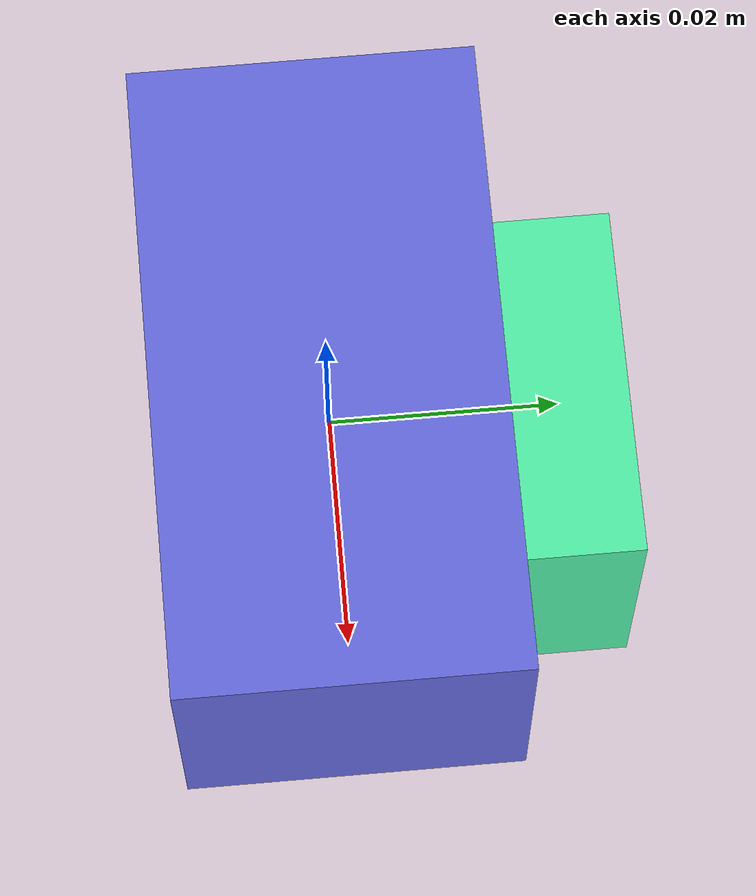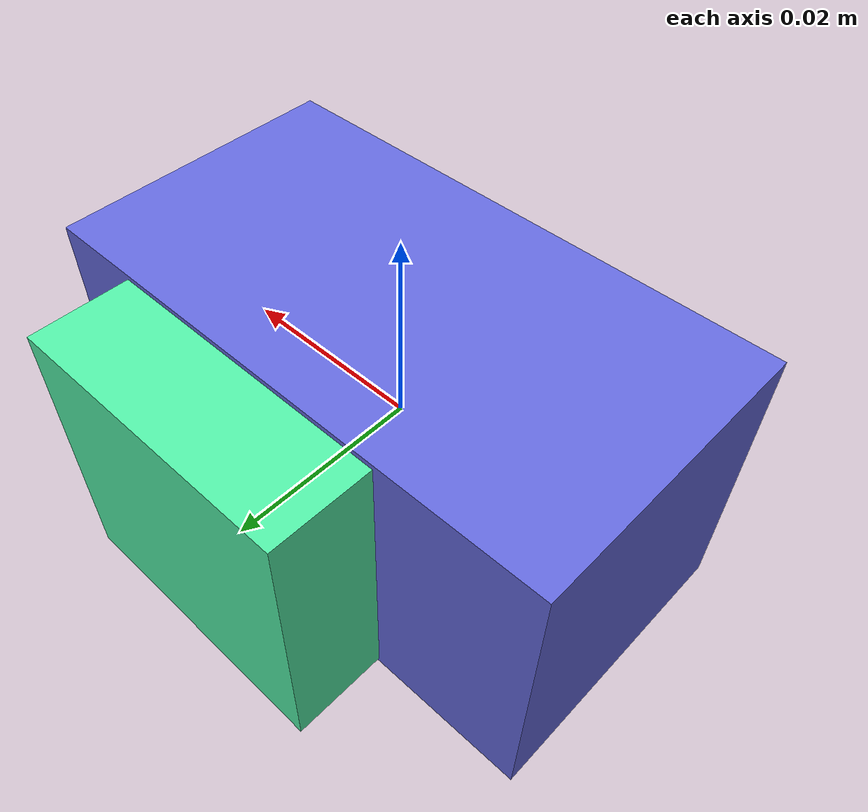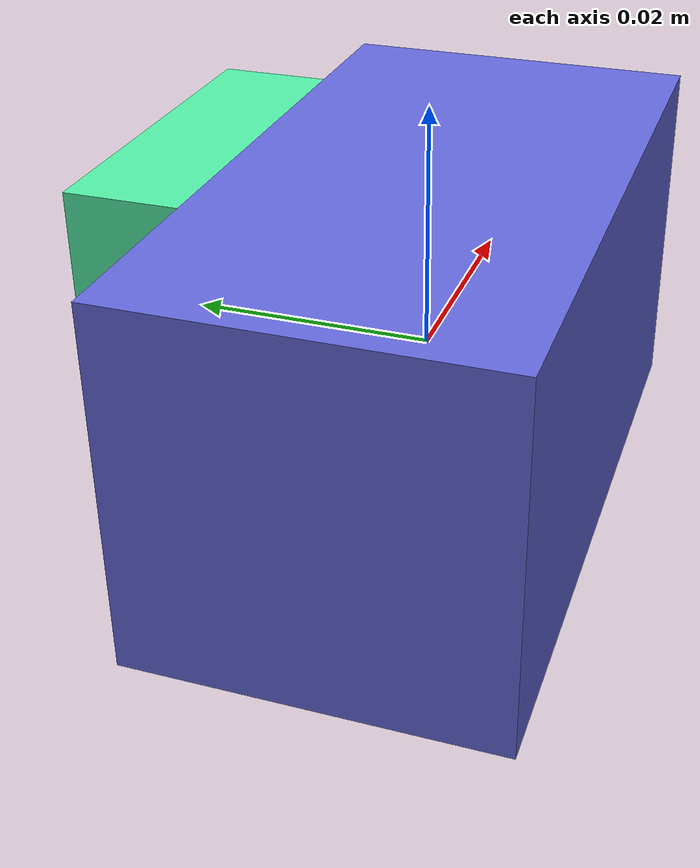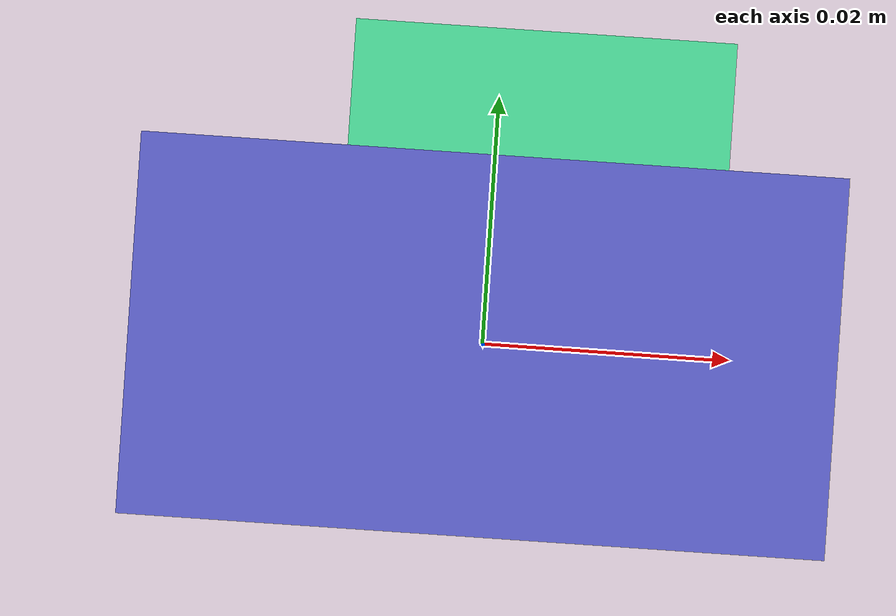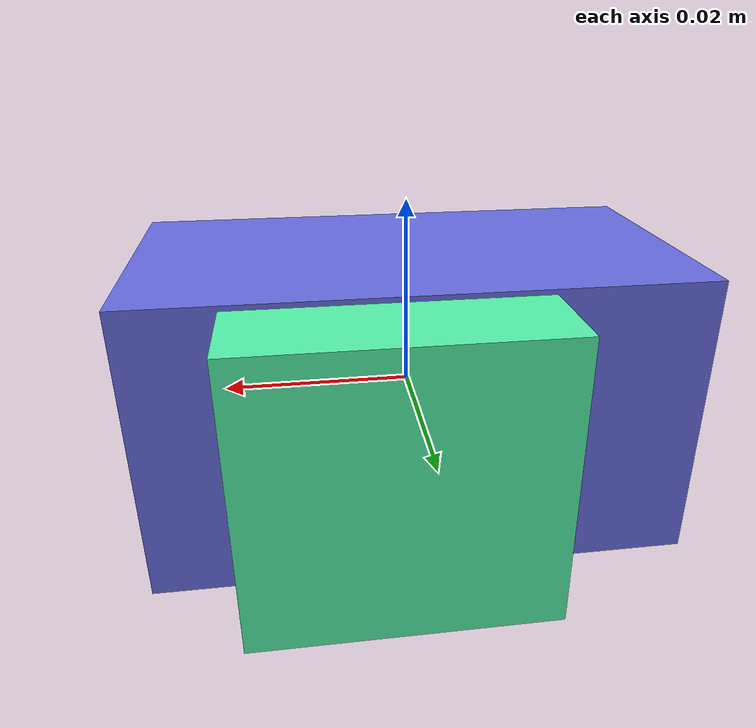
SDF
<sdf version="1.4"><world name="default"><model name="object0"><link name="link1"><pose>0 0 0 0 0 0</pose><inertial><pose>0 0 0 0 0 0</pose><mass>0.030074808835225505</mass><inertia><ixx>4.511221325283825e-06</ixx><ixy>0</ixy><iyy>1.0029526971035454e-05</iyy><ixz>0</ixz><iyz>0</iyz><izz>1.0029526971035454e-05</izz></inertia></inertial><visual name="link1_visual"><pose>0 0  0 0 0 0</pose><geometry><box><size>0.05569409043560279 0.03 0.03</size></box></geometry><material><diffuse>0.3915857202259466 0.4100866317878108 0.8617584446230007 1</diffuse></material></visual><collision><pose>0 0  0 0 0 0</pose><geometry><box><size>0.05569409043560279 0.03 0.03</size></box></geometry></collision></link><link name="link2"><pose>0.0033680391425401357 0.005528567097974002 0 0 0 0</pose><inertial><pose>0 0 0 0 0 0</pose><mass>0.02097531714326078</mass><inertia><ixx>4.107303793052482e-06</ixx><ixy>0</ixy><iyy>3.0431689288680846e-06</iyy><ixz>0</ixz><iyz>0</iyz><izz>4.210432435673514e-06</izz></inertia></inertial><visual name="link2_visual"><pose>0 0  0 0 0 0</pose><geometry><box><size>0.03 0.038843179894927374 0.028999999999999998</size></box></geometry><material><diffuse>0.31957967255488423 0.9305304408593378 0.6508411886350147 1</diffuse></material></visual><collision><pose>0 0  0 0 0 0</pose><geometry><box><size>0.03 0.038843179894927374 0.028999999999999998</size></box></geometry></collision></link><joint name="link_joint_0" type="fixed"><parent>link1</parent><child>link2</child><pose>0 0 0 0 0 0</pose><axis><xyz>0 0 1</xyz></axis></joint></model></world></sdf>
